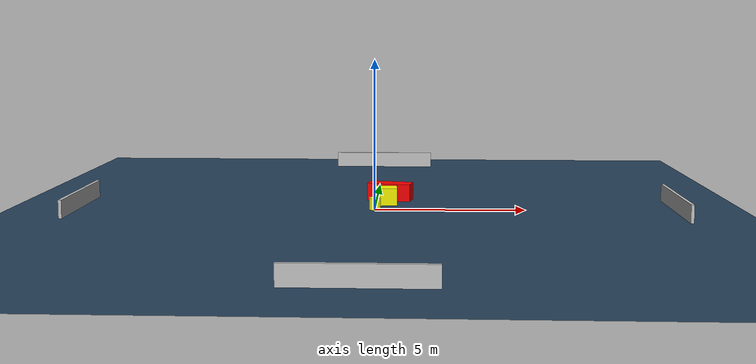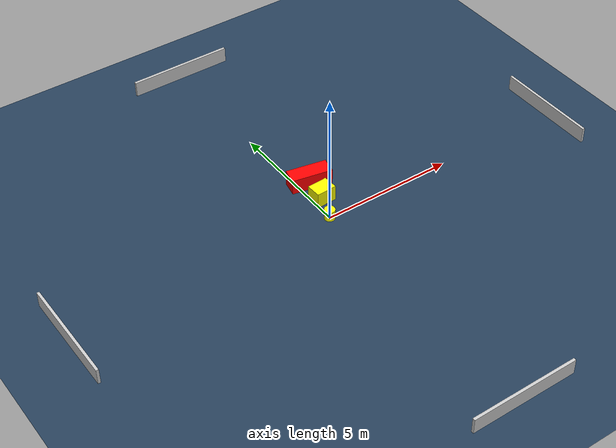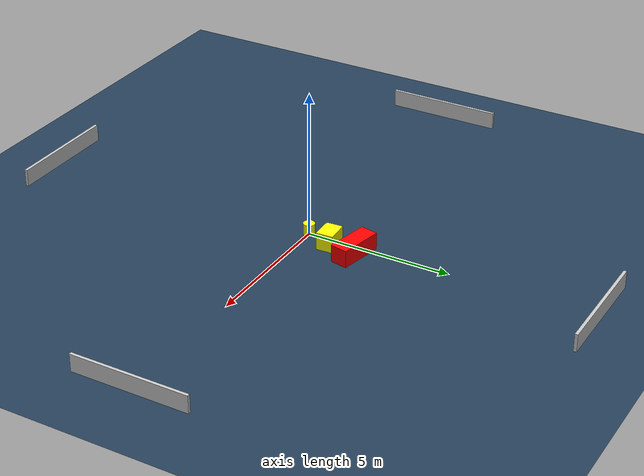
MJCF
<?xml version="1.0" ?>
<mujoco model="generated_environment">
  <option timestep="0.01" integrator="RK4" cone="elliptic"/>
  <default>
    <geom density="1"/>
  </default>
  <asset>
    <texture builtin="gradient" height="3072" name="skybox" rgb1="0.3 0.5 0.7" rgb2="0 0 0" type="skybox" width="512"/>
    <texture builtin="checker" height="300" name="groundplane" rgb1="0.2 0.3 0.4" rgb2="0.1 0.2 0.3" type="2d" width="300"/>
    <material name="groundplane" reflectance="0.2" texrepeat="5 5" texture="groundplane"/>
  </asset>
  <worldbody>
    <light dir="0 0 -1" directional="true" pos="0 0 1.5"/>
    <geom condim="3" friction="0.5 0.005 0.001" material="groundplane" name="floor" pos="0 0 0" size="0 0 0.05" type="plane"/>
    <body name="walls">
      <geom name="wall_1" condim="4" pos="-10.0 0.0 0.3" rgba="0.800000011920929 0.800000011920929 0.800000011920929 1.0" size="0.05 2.0 0.3" type="box"/>
      <geom name="wall_2" condim="4" pos="10.0 0.0 0.3" rgba="0.800000011920929 0.800000011920929 0.800000011920929 1.0" size="0.05 2.0 0.3" type="box"/>
      <geom name="wall_3" condim="4" pos="0.0 -10.0 0.3" rgba="0.800000011920929 0.800000011920929 0.800000011920929 1.0" size="2.0 0.05 0.3" type="box"/>
      <geom name="wall_4" condim="4" pos="0.0 10.0 0.3" rgba="0.800000011920929 0.800000011920929 0.800000011920929 1.0" size="2.0 0.05 0.3" type="box"/>
    </body>
    <body name="robot">
      <joint name="joint_x" type="slide" pos="0 0 0" axis="1 0 0"/>
      <joint name="joint_y" type="slide" pos="0 0 0" axis="0 1 0"/>
      <geom name="robot" type="cylinder" pos="0.0 0.0 0.2" size="0.2 0.2 0.0" mass="5.0" friction="1.0 0.005 0.0001" condim="4" rgba="1.0 1.0 0.0 1.0"/>
    </body>
    <body name="obstacle_1_movable">
      <geom name="obstacle_1_movable" condim="4" pos="0.33767341851854693 0.9459051504239632 0.3" euler="0 0 182.7728870902709" friction="0.0 0.005 0.001" rgba="1.0 1.0 0.0 1.0" size="0.38206810860185914 0.28472415829949194 0.3" type="box" mass="0.1"/>
      <joint type="free"/>
    </body>
    <body name="obstacle_2_static">
      <geom name="obstacle_2_static" condim="4" pos="0.4612291862713811 1.902178688654955 0.3" euler="0 0 258.74624565141056" friction="0.0 0.005 0.001" rgba="1.0 0.0 0.0 1.0" size="0.3019142517710077 0.764215746274058 0.3" type="box"/>
    </body>
  </worldbody>
  <actuator>
    <motor name="actuator_x" joint="joint_x" gear="1" ctrlrange="-1 1"/>
    <motor name="actuator_y" joint="joint_y" gear="1" ctrlrange="-1 1"/>
  </actuator>
</mujoco>
